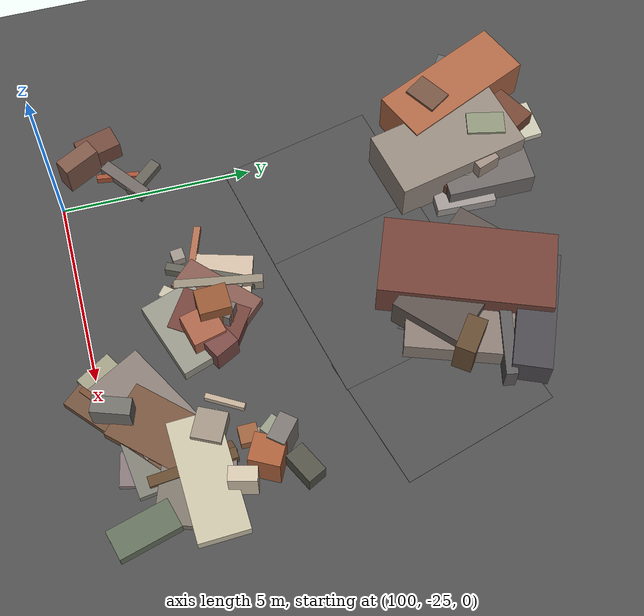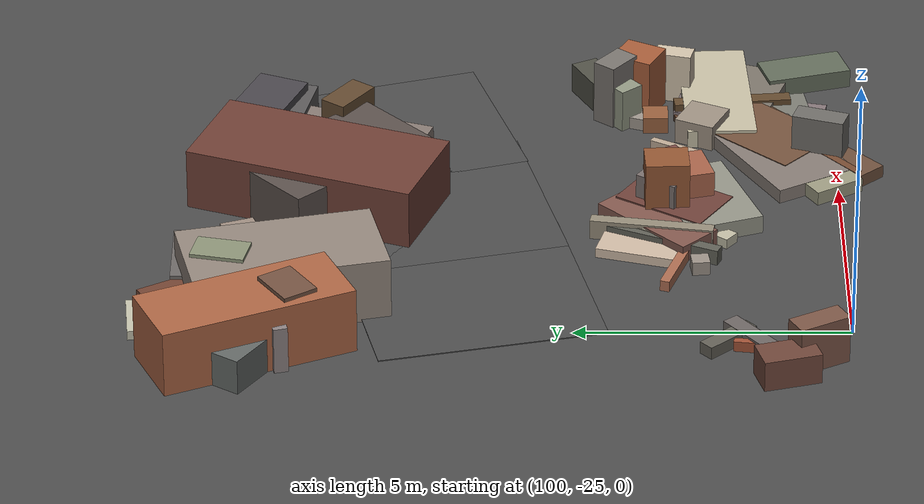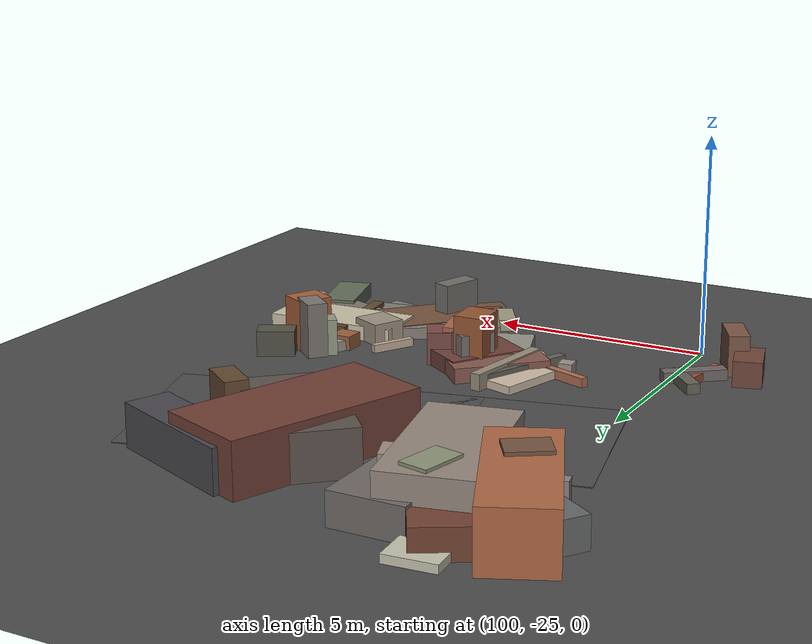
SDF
<sdf version="1.6">
 <world name="navitas_arena">
  <model name="ground_plane">
   <static>true</static>
   <link name="link">
    <collision name="collision">
     <geometry><plane><normal>0 0 1</normal><size>400 400</size></plane></geometry>
     <surface><friction><ode><mu>0.800</mu><mu2>0.800</mu2></ode></friction></surface>
    </collision>
    <visual name="visual">
     <cast_shadows>false</cast_shadows>
     <geometry><plane><normal>0 0 1</normal><size>400 400</size></plane></geometry>
     <material>
      <specular>0.04 0.04 0.04 1</specular>
      <script>
       <uri>file://media/materials/scripts/navitas_asphalt.material</uri>
       <name>Navitas/RealArenaAsphalt</name>
      </script>
     </material>
    </visual>
   </link>
  </model>
  <model name="road_zor_3_4">
   <static>true</static>
   <pose>101.390 -18.163 0.040 0 0 0.225</pose>
   <link name="link">
    <collision name="col"><geometry><box><size>3.949 4.200 0.020</size></box></geometry></collision>
    <visual name="vis">
     <geometry><box><size>3.949 4.200 0.020</size></box></geometry>
     <material>
      <specular>0.04 0.04 0.04 1</specular>
      <script>
       <uri>file://media/materials/scripts/navitas_asphalt.material</uri>
       <name>Navitas/RealArenaAsphalt</name>
      </script>
     </material>
    </visual>
   </link>
  </model>
  <model name="road_zor_3_5">
   <static>true</static>
   <pose>104.353 -17.463 0.040 0 0 0.239</pose>
   <link name="link">
    <collision name="col"><geometry><box><size>3.940 4.200 0.020</size></box></geometry></collision>
    <visual name="vis">
     <geometry><box><size>3.940 4.200 0.020</size></box></geometry>
     <material>
      <specular>0.04 0.04 0.04 1</specular>
      <script>
       <uri>file://media/materials/scripts/navitas_asphalt.material</uri>
       <name>Navitas/RealArenaAsphalt</name>
      </script>
     </material>
    </visual>
   </link>
  </model>
  <model name="road_zor_3_6">
   <static>true</static>
   <pose>107.102 -16.714 0.040 0 0 0.297</pose>
   <link name="link">
    <collision name="col"><geometry><box><size>3.562 4.200 0.020</size></box></geometry></collision>
    <visual name="vis">
     <geometry><box><size>3.562 4.200 0.020</size></box></geometry>
     <material>
      <specular>0.04 0.04 0.04 1</specular>
      <script>
       <uri>file://media/materials/scripts/navitas_asphalt.material</uri>
       <name>Navitas/RealArenaAsphalt</name>
      </script>
     </material>
    </visual>
   </link>
  </model>
  <model name="deb_zor_79">
   <static>true</static>
   <pose>100.558 -14.616 0.000 0 0 0</pose>
   <link name="link">
    <collision name="col_0">
     <pose>1.005 -0.386 0.356 0.000 0.000 1.425</pose>
     <geometry><box><size>1.147 0.582 0.711</size></box></geometry>
    </collision>
    <visual name="vis_0">
     <pose>1.005 -0.386 0.356 0.000 0.000 1.425</pose>
     <geometry><box><size>1.147 0.582 0.711</size></box></geometry>
     <material>
      <ambient>0.53 0.50 0.47 1</ambient>
      <diffuse>0.57 0.54 0.51 1</diffuse>
      <specular>0.05 0.05 0.045 1</specular>
     </material>
    </visual>
    <collision name="col_1">
     <pose>-0.240 -0.750 0.122 0.000 0.000 4.120</pose>
     <geometry><box><size>0.203 0.335 0.243</size></box></geometry>
    </collision>
    <visual name="vis_1">
     <pose>-0.240 -0.750 0.122 0.000 0.000 4.120</pose>
     <geometry><box><size>0.203 0.335 0.243</size></box></geometry>
     <material>
      <ambient>0.52 0.54 0.50 1</ambient>
      <diffuse>0.57 0.59 0.54 1</diffuse>
      <specular>0.05 0.05 0.045 1</specular>
     </material>
    </visual>
    <collision name="col_2">
     <pose>0.915 -0.486 0.303 0.000 0.000 2.898</pose>
     <geometry><box><size>1.034 0.739 0.606</size></box></geometry>
    </collision>
    <visual name="vis_2">
     <pose>0.915 -0.486 0.303 0.000 0.000 2.898</pose>
     <geometry><box><size>1.034 0.739 0.606</size></box></geometry>
     <material>
      <ambient>0.73 0.70 0.61 1</ambient>
      <diffuse>0.79 0.75 0.66 1</diffuse>
      <specular>0.05 0.05 0.045 1</specular>
     </material>
    </visual>
    <collision name="col_3">
     <pose>0.626 0.856 0.170 0.000 0.000 2.618</pose>
     <geometry><box><size>1.403 0.922 0.340</size></box></geometry>
    </collision>
    <visual name="vis_3">
     <pose>0.626 0.856 0.170 0.000 0.000 2.618</pose>
     <geometry><box><size>1.403 0.922 0.340</size></box></geometry>
     <material>
      <ambient>0.42 0.30 0.21 1</ambient>
      <diffuse>0.46 0.33 0.23 1</diffuse>
      <specular>0.05 0.05 0.045 1</specular>
     </material>
    </visual>
    <collision name="col_4">
     <pose>0.509 -0.779 0.139 0.000 0.000 1.353</pose>
     <geometry><box><size>0.456 0.291 0.279</size></box></geometry>
    </collision>
    <visual name="vis_4">
     <pose>0.509 -0.779 0.139 0.000 0.000 1.353</pose>
     <geometry><box><size>0.456 0.291 0.279</size></box></geometry>
     <material>
      <ambient>0.33 0.34 0.31 1</ambient>
      <diffuse>0.35 0.37 0.34 1</diffuse>
      <specular>0.05 0.05 0.045 1</specular>
     </material>
    </visual>
   </link>
  </model>
  <model name="deb_zor_85">
   <static>true</static>
   <pose>108.392 -23.581 0.000 0 0 0</pose>
   <link name="link">
    <collision name="col_0">
     <pose>-0.228 0.759 0.172 0.000 0.000 3.188</pose>
     <geometry><box><size>3.102 1.303 0.344</size></box></geometry>
    </collision>
    <visual name="vis_0">
     <pose>-0.228 0.759 0.172 0.000 0.000 3.188</pose>
     <geometry><box><size>3.102 1.303 0.344</size></box></geometry>
     <material>
      <ambient>0.73 0.69 0.60 1</ambient>
      <diffuse>0.78 0.75 0.65 1</diffuse>
      <specular>0.05 0.05 0.045 1</specular>
     </material>
    </visual>
    <collision name="col_1">
     <pose>0.687 -0.950 0.178 0.000 0.000 1.846</pose>
     <geometry><box><size>1.614 0.784 0.356</size></box></geometry>
    </collision>
    <visual name="vis_1">
     <pose>0.687 -0.950 0.178 0.000 0.000 1.846</pose>
     <geometry><box><size>1.614 0.784 0.356</size></box></geometry>
     <material>
      <ambient>0.36 0.39 0.33 1</ambient>
      <diffuse>0.39 0.43 0.36 1</diffuse>
      <specular>0.05 0.05 0.045 1</specular>
     </material>
    </visual>
    <collision name="col_2">
     <pose>0.548 -0.780 0.132 0.000 0.000 1.848</pose>
     <geometry><box><size>1.262 0.219 0.265</size></box></geometry>
    </collision>
    <visual name="vis_2">
     <pose>0.548 -0.780 0.132 0.000 0.000 1.848</pose>
     <geometry><box><size>1.262 0.219 0.265</size></box></geometry>
     <material>
      <ambient>0.35 0.29 0.28 1</ambient>
      <diffuse>0.38 0.31 0.30 1</diffuse>
      <specular>0.05 0.05 0.045 1</specular>
     </material>
    </visual>
    <collision name="col_3">
     <pose>-0.521 0.267 0.142 0.000 0.000 2.804</pose>
     <geometry><box><size>2.728 1.141 0.285</size></box></geometry>
    </collision>
    <visual name="vis_3">
     <pose>-0.521 0.267 0.142 0.000 0.000 2.804</pose>
     <geometry><box><size>2.728 1.141 0.285</size></box></geometry>
     <material>
      <ambient>0.45 0.43 0.39 1</ambient>
      <diffuse>0.49 0.46 0.42 1</diffuse>
      <specular>0.05 0.05 0.045 1</specular>
     </material>
    </visual>
   </link>
  </model>
  <model name="deb_zor_101">
   <static>true</static>
   <pose>107.456 -21.894 0.000 0 0 0</pose>
   <link name="link">
    <collision name="col_0">
     <pose>-0.001 0.595 0.117 0.000 0.000 -0.361</pose>
     <geometry><box><size>0.339 0.400 0.235</size></box></geometry>
    </collision>
    <visual name="vis_0">
     <pose>-0.001 0.595 0.117 0.000 0.000 -0.361</pose>
     <geometry><box><size>0.339 0.400 0.235</size></box></geometry>
     <material>
      <ambient>0.58 0.54 0.51 1</ambient>
      <diffuse>0.62 0.59 0.55 1</diffuse>
      <specular>0.05 0.05 0.045 1</specular>
     </material>
    </visual>
    <collision name="col_1">
     <pose>0.056 -0.245 0.066 0.000 0.000 1.880</pose>
     <geometry><box><size>0.184 0.253 0.132</size></box></geometry>
    </collision>
    <visual name="vis_1">
     <pose>0.056 -0.245 0.066 0.000 0.000 1.880</pose>
     <geometry><box><size>0.184 0.253 0.132</size></box></geometry>
     <material>
      <ambient>0.36 0.24 0.17 1</ambient>
      <diffuse>0.39 0.26 0.18 1</diffuse>
      <specular>0.05 0.05 0.045 1</specular>
     </material>
    </visual>
    <collision name="col_2">
     <pose>-0.085 0.240 0.163 0.000 0.000 1.576</pose>
     <geometry><box><size>0.472 0.475 0.327</size></box></geometry>
    </collision>
    <visual name="vis_2">
     <pose>-0.085 0.240 0.163 0.000 0.000 1.576</pose>
     <geometry><box><size>0.472 0.475 0.327</size></box></geometry>
     <material>
      <ambient>0.56 0.35 0.23 1</ambient>
      <diffuse>0.60 0.38 0.24 1</diffuse>
      <specular>0.05 0.05 0.045 1</specular>
     </material>
    </visual>
    <collision name="col_3">
     <pose>-0.466 -0.629 0.249 0.000 0.000 -0.447</pose>
     <geometry><box><size>0.796 0.766 0.497</size></box></geometry>
    </collision>
    <visual name="vis_3">
     <pose>-0.466 -0.629 0.249 0.000 0.000 -0.447</pose>
     <geometry><box><size>0.796 0.766 0.497</size></box></geometry>
     <material>
      <ambient>0.57 0.53 0.47 1</ambient>
      <diffuse>0.62 0.57 0.51 1</diffuse>
      <specular>0.05 0.05 0.045 1</specular>
     </material>
    </visual>
    <collision name="col_4">
     <pose>1.089 -0.137 0.494 0.000 0.000 1.318</pose>
     <geometry><box><size>0.708 0.376 0.988</size></box></geometry>
    </collision>
    <visual name="vis_4">
     <pose>1.089 -0.137 0.494 0.000 0.000 1.318</pose>
     <geometry><box><size>0.708 0.376 0.988</size></box></geometry>
     <material>
      <ambient>0.76 0.71 0.62 1</ambient>
      <diffuse>0.82 0.76 0.67 1</diffuse>
      <specular>0.05 0.05 0.045 1</specular>
     </material>
    </visual>
    <collision name="col_5">
     <pose>-1.106 -0.127 0.093 0.000 0.000 1.048</pose>
     <geometry><box><size>1.023 0.141 0.185</size></box></geometry>
    </collision>
    <visual name="vis_5">
     <pose>-1.106 -0.127 0.093 0.000 0.000 1.048</pose>
     <geometry><box><size>1.023 0.141 0.185</size></box></geometry>
     <material>
      <ambient>0.69 0.62 0.55 1</ambient>
      <diffuse>0.75 0.67 0.59 1</diffuse>
      <specular>0.05 0.05 0.045 1</specular>
     </material>
    </visual>
   </link>
  </model>
  <model name="deb_zor_125">
   <static>true</static>
   <pose>102.938 -21.543 0.000 0 0 0</pose>
   <link name="link">
    <collision name="col_0">
     <pose>-0.041 -0.094 0.148 0.000 0.000 1.144</pose>
     <geometry><box><size>2.342 0.215 0.296</size></box></geometry>
    </collision>
    <visual name="vis_0">
     <pose>-0.041 -0.094 0.148 0.000 0.000 1.144</pose>
     <geometry><box><size>2.342 0.215 0.296</size></box></geometry>
     <material>
      <ambient>0.35 0.35 0.31 1</ambient>
      <diffuse>0.38 0.38 0.34 1</diffuse>
      <specular>0.05 0.05 0.045 1</specular>
     </material>
    </visual>
    <collision name="col_1">
     <pose>0.262 0.051 0.188 0.000 0.000 1.405</pose>
     <geometry><box><size>2.274 0.232 0.377</size></box></geometry>
    </collision>
    <visual name="vis_1">
     <pose>0.262 0.051 0.188 0.000 0.000 1.405</pose>
     <geometry><box><size>2.274 0.232 0.377</size></box></geometry>
     <material>
      <ambient>0.54 0.51 0.45 1</ambient>
      <diffuse>0.59 0.55 0.48 1</diffuse>
      <specular>0.05 0.05 0.045 1</specular>
     </material>
    </visual>
    <collision name="col_2">
     <pose>0.159 0.120 0.156 0.000 0.000 1.039</pose>
     <geometry><box><size>1.206 0.147 0.313</size></box></geometry>
    </collision>
    <visual name="vis_2">
     <pose>0.159 0.120 0.156 0.000 0.000 1.039</pose>
     <geometry><box><size>1.206 0.147 0.313</size></box></geometry>
     <material>
      <ambient>0.65 0.62 0.55 1</ambient>
      <diffuse>0.70 0.67 0.59 1</diffuse>
      <specular>0.05 0.05 0.045 1</specular>
     </material>
    </visual>
    <collision name="col_3">
     <pose>0.315 0.103 0.092 0.000 0.000 1.290</pose>
     <geometry><box><size>1.551 1.784 0.184</size></box></geometry>
    </collision>
    <visual name="vis_3">
     <pose>0.315 0.103 0.092 0.000 0.000 1.290</pose>
     <geometry><box><size>1.551 1.784 0.184</size></box></geometry>
     <material>
      <ambient>0.75 0.67 0.60 1</ambient>
      <diffuse>0.81 0.73 0.65 1</diffuse>
      <specular>0.05 0.05 0.045 1</specular>
     </material>
    </visual>
   </link>
  </model>
  <model name="deb_zor_128">
   <static>true</static>
   <pose>100.625 -14.306 0.000 0 0 0</pose>
   <link name="link">
    <collision name="col_0">
     <pose>0.789 0.393 0.109 0.000 0.000 2.242</pose>
     <geometry><box><size>0.449 0.219 0.217</size></box></geometry>
    </collision>
    <visual name="vis_0">
     <pose>0.789 0.393 0.109 0.000 0.000 2.242</pose>
     <geometry><box><size>0.449 0.219 0.217</size></box></geometry>
     <material>
      <ambient>0.49 0.51 0.46 1</ambient>
      <diffuse>0.53 0.55 0.50 1</diffuse>
      <specular>0.05 0.05 0.045 1</specular>
     </material>
    </visual>
    <collision name="col_1">
     <pose>0.316 -0.804 0.070 0.000 0.000 3.372</pose>
     <geometry><box><size>2.113 0.239 0.139</size></box></geometry>
    </collision>
    <visual name="vis_1">
     <pose>0.316 -0.804 0.070 0.000 0.000 3.372</pose>
     <geometry><box><size>2.113 0.239 0.139</size></box></geometry>
     <material>
      <ambient>0.45 0.31 0.25 1</ambient>
      <diffuse>0.48 0.34 0.27 1</diffuse>
      <specular>0.05 0.05 0.045 1</specular>
     </material>
    </visual>
    <collision name="col_2">
     <pose>1.102 -0.342 0.157 0.000 0.000 3.110</pose>
     <geometry><box><size>1.742 1.581 0.314</size></box></geometry>
    </collision>
    <visual name="vis_2">
     <pose>1.102 -0.342 0.157 0.000 0.000 3.110</pose>
     <geometry><box><size>1.742 1.581 0.314</size></box></geometry>
     <material>
      <ambient>0.57 0.55 0.53 1</ambient>
      <diffuse>0.62 0.59 0.57 1</diffuse>
      <specular>0.05 0.05 0.045 1</specular>
     </material>
    </visual>
    <collision name="col_3">
     <pose>-0.212 1.021 0.089 0.000 0.000 1.650</pose>
     <geometry><box><size>2.502 1.074 0.178</size></box></geometry>
    </collision>
    <visual name="vis_3">
     <pose>-0.212 1.021 0.089 0.000 0.000 1.650</pose>
     <geometry><box><size>2.502 1.074 0.178</size></box></geometry>
     <material>
      <ambient>0.72 0.70 0.63 1</ambient>
      <diffuse>0.77 0.76 0.68 1</diffuse>
      <specular>0.05 0.05 0.045 1</specular>
     </material>
    </visual>
    <collision name="col_4">
     <pose>0.455 0.418 0.338 0.000 0.000 2.115</pose>
     <geometry><box><size>0.529 0.873 0.676</size></box></geometry>
    </collision>
    <visual name="vis_4">
     <pose>0.455 0.418 0.338 0.000 0.000 2.115</pose>
     <geometry><box><size>0.529 0.873 0.676</size></box></geometry>
     <material>
      <ambient>0.49 0.36 0.25 1</ambient>
      <diffuse>0.53 0.38 0.27 1</diffuse>
      <specular>0.05 0.05 0.045 1</specular>
     </material>
    </visual>
   </link>
  </model>
  <model name="deb_zor_168">
   <static>true</static>
   <pose>104.548 -22.015 0.000 0 0 0</pose>
   <link name="link">
    <collision name="col_0">
     <pose>-0.395 0.091 0.186 0.000 0.000 4.134</pose>
     <geometry><box><size>1.817 1.171 0.372</size></box></geometry>
    </collision>
    <visual name="vis_0">
     <pose>-0.395 0.091 0.186 0.000 0.000 4.134</pose>
     <geometry><box><size>1.817 1.171 0.372</size></box></geometry>
     <material>
      <ambient>0.40 0.25 0.21 1</ambient>
      <diffuse>0.44 0.26 0.23 1</diffuse>
      <specular>0.05 0.05 0.045 1</specular>
     </material>
    </visual>
    <collision name="col_1">
     <pose>-0.296 -0.479 0.175 0.000 0.000 3.477</pose>
     <geometry><box><size>2.143 1.457 0.350</size></box></geometry>
    </collision>
    <visual name="vis_1">
     <pose>-0.296 -0.479 0.175 0.000 0.000 3.477</pose>
     <geometry><box><size>2.143 1.457 0.350</size></box></geometry>
     <material>
      <ambient>0.53 0.54 0.49 1</ambient>
      <diffuse>0.58 0.58 0.53 1</diffuse>
      <specular>0.05 0.05 0.045 1</specular>
     </material>
    </visual>
    <collision name="col_2">
     <pose>0.364 0.148 0.371 0.000 0.000 2.065</pose>
     <geometry><box><size>0.678 0.805 0.742</size></box></geometry>
    </collision>
    <visual name="vis_2">
     <pose>0.364 0.148 0.371 0.000 0.000 2.065</pose>
     <geometry><box><size>0.678 0.805 0.742</size></box></geometry>
     <material>
      <ambient>0.45 0.27 0.25 1</ambient>
      <diffuse>0.48 0.29 0.27 1</diffuse>
      <specular>0.05 0.05 0.045 1</specular>
     </material>
    </visual>
    <collision name="col_3">
     <pose>-0.458 0.242 0.625 0.000 0.000 3.182</pose>
     <geometry><box><size>0.689 0.812 1.250</size></box></geometry>
    </collision>
    <visual name="vis_3">
     <pose>-0.458 0.242 0.625 0.000 0.000 3.182</pose>
     <geometry><box><size>0.689 0.812 1.250</size></box></geometry>
     <material>
      <ambient>0.54 0.31 0.19 1</ambient>
      <diffuse>0.58 0.34 0.20 1</diffuse>
      <specular>0.05 0.05 0.045 1</specular>
     </material>
    </visual>
    <collision name="col_4">
     <pose>-0.035 -0.118 0.426 0.000 0.000 3.393</pose>
     <geometry><box><size>0.875 0.868 0.851</size></box></geometry>
    </collision>
    <visual name="vis_4">
     <pose>-0.035 -0.118 0.426 0.000 0.000 3.393</pose>
     <geometry><box><size>0.875 0.868 0.851</size></box></geometry>
     <material>
      <ambient>0.61 0.36 0.27 1</ambient>
      <diffuse>0.66 0.39 0.29 1</diffuse>
      <specular>0.05 0.05 0.045 1</specular>
     </material>
    </visual>
    <collision name="col_5">
     <pose>-0.439 0.329 0.418 0.000 0.000 2.551</pose>
     <geometry><box><size>0.458 0.827 0.837</size></box></geometry>
    </collision>
    <visual name="vis_5">
     <pose>-0.439 0.329 0.418 0.000 0.000 2.551</pose>
     <geometry><box><size>0.458 0.827 0.837</size></box></geometry>
     <material>
      <ambient>0.44 0.41 0.40 1</ambient>
      <diffuse>0.48 0.44 0.43 1</diffuse>
      <specular>0.05 0.05 0.045 1</specular>
     </material>
    </visual>
   </link>
  </model>
  <model name="deb_zor_214">
   <static>true</static>
   <pose>108.108 -20.907 0.000 0 0 0</pose>
   <link name="link">
    <collision name="col_0">
     <pose>-0.317 -0.410 0.104 0.000 0.000 0.873</pose>
     <geometry><box><size>0.395 0.336 0.209</size></box></geometry>
    </collision>
    <visual name="vis_0">
     <pose>-0.317 -0.410 0.104 0.000 0.000 0.873</pose>
     <geometry><box><size>0.395 0.336 0.209</size></box></geometry>
     <material>
      <ambient>0.49 0.48 0.44 1</ambient>
      <diffuse>0.53 0.52 0.48 1</diffuse>
      <specular>0.05 0.05 0.045 1</specular>
     </material>
    </visual>
    <collision name="col_1">
     <pose>0.064 -0.443 0.588 0.000 0.000 1.091</pose>
     <geometry><box><size>0.794 0.711 1.177</size></box></geometry>
    </collision>
    <visual name="vis_1">
     <pose>0.064 -0.443 0.588 0.000 0.000 1.091</pose>
     <geometry><box><size>0.794 0.711 1.177</size></box></geometry>
     <material>
      <ambient>0.61 0.34 0.21 1</ambient>
      <diffuse>0.66 0.37 0.23 1</diffuse>
      <specular>0.05 0.05 0.045 1</specular>
     </material>
    </visual>
    <collision name="col_2">
     <pose>0.395 0.390 0.292 0.000 0.000 2.045</pose>
     <geometry><box><size>0.517 0.858 0.585</size></box></geometry>
    </collision>
    <visual name="vis_2">
     <pose>0.395 0.390 0.292 0.000 0.000 2.045</pose>
     <geometry><box><size>0.517 0.858 0.585</size></box></geometry>
     <material>
      <ambient>0.30 0.29 0.26 1</ambient>
      <diffuse>0.32 0.32 0.28 1</diffuse>
      <specular>0.05 0.05 0.045 1</specular>
     </material>
    </visual>
    <collision name="col_3">
     <pose>-0.541 -0.133 0.415 0.000 0.000 2.265</pose>
     <geometry><box><size>0.483 0.533 0.829</size></box></geometry>
    </collision>
    <visual name="vis_3">
     <pose>-0.541 -0.133 0.415 0.000 0.000 2.265</pose>
     <geometry><box><size>0.483 0.533 0.829</size></box></geometry>
     <material>
      <ambient>0.53 0.55 0.48 1</ambient>
      <diffuse>0.58 0.60 0.52 1</diffuse>
      <specular>0.05 0.05 0.045 1</specular>
     </material>
    </visual>
    <collision name="col_4">
     <pose>-0.334 0.008 0.625 0.000 0.000 0.882</pose>
     <geometry><box><size>0.464 0.715 1.249</size></box></geometry>
    </collision>
    <visual name="vis_4">
     <pose>-0.334 0.008 0.625 0.000 0.000 0.882</pose>
     <geometry><box><size>0.464 0.715 1.249</size></box></geometry>
     <material>
      <ambient>0.45 0.43 0.41 1</ambient>
      <diffuse>0.48 0.46 0.44 1</diffuse>
      <specular>0.05 0.05 0.045 1</specular>
     </material>
    </visual>
   </link>
  </model>
  <model name="deb_zor_257">
   <static>true</static>
   <pose>107.472 -23.402 0.000 0 0 0</pose>
   <link name="link">
    <collision name="col_0">
     <pose>0.069 0.335 0.068 0.000 0.000 3.535</pose>
     <geometry><box><size>0.207 0.228 0.136</size></box></geometry>
    </collision>
    <visual name="vis_0">
     <pose>0.069 0.335 0.068 0.000 0.000 3.535</pose>
     <geometry><box><size>0.207 0.228 0.136</size></box></geometry>
     <material>
      <ambient>0.42 0.27 0.23 1</ambient>
      <diffuse>0.45 0.29 0.24 1</diffuse>
      <specular>0.05 0.05 0.045 1</specular>
     </material>
    </visual>
    <collision name="col_1">
     <pose>-0.535 -0.196 0.112 0.000 0.000 1.541</pose>
     <geometry><box><size>1.840 0.230 0.223</size></box></geometry>
    </collision>
    <visual name="vis_1">
     <pose>-0.535 -0.196 0.112 0.000 0.000 1.541</pose>
     <geometry><box><size>1.840 0.230 0.223</size></box></geometry>
     <material>
      <ambient>0.61 0.35 0.24 1</ambient>
      <diffuse>0.66 0.37 0.26 1</diffuse>
      <specular>0.05 0.05 0.045 1</specular>
     </material>
    </visual>
    <collision name="col_2">
     <pose>-0.467 -0.200 0.135 0.000 0.000 1.211</pose>
     <geometry><box><size>0.398 0.208 0.270</size></box></geometry>
    </collision>
    <visual name="vis_2">
     <pose>-0.467 -0.200 0.135 0.000 0.000 1.211</pose>
     <geometry><box><size>0.398 0.208 0.270</size></box></geometry>
     <material>
      <ambient>0.66 0.64 0.58 1</ambient>
      <diffuse>0.72 0.69 0.62 1</diffuse>
      <specular>0.05 0.05 0.045 1</specular>
     </material>
    </visual>
    <collision name="col_3">
     <pose>0.401 0.283 0.163 0.000 0.000 1.670</pose>
     <geometry><box><size>2.213 0.274 0.326</size></box></geometry>
    </collision>
    <visual name="vis_3">
     <pose>0.401 0.283 0.163 0.000 0.000 1.670</pose>
     <geometry><box><size>2.213 0.274 0.326</size></box></geometry>
     <material>
      <ambient>0.36 0.27 0.17 1</ambient>
      <diffuse>0.39 0.29 0.18 1</diffuse>
      <specular>0.05 0.05 0.045 1</specular>
     </material>
    </visual>
    <collision name="col_4">
     <pose>0.275 -0.056 0.093 0.000 0.000 1.359</pose>
     <geometry><box><size>2.798 0.868 0.186</size></box></geometry>
    </collision>
    <visual name="vis_4">
     <pose>0.275 -0.056 0.093 0.000 0.000 1.359</pose>
     <geometry><box><size>2.798 0.868 0.186</size></box></geometry>
     <material>
      <ambient>0.48 0.43 0.43 1</ambient>
      <diffuse>0.52 0.46 0.47 1</diffuse>
      <specular>0.05 0.05 0.045 1</specular>
     </material>
    </visual>
    <collision name="col_5">
     <pose>-0.189 -0.128 0.080 0.000 0.000 2.247</pose>
     <geometry><box><size>1.626 0.136 0.160</size></box></geometry>
    </collision>
    <visual name="vis_5">
     <pose>-0.189 -0.128 0.080 0.000 0.000 2.247</pose>
     <geometry><box><size>1.626 0.136 0.160</size></box></geometry>
     <material>
      <ambient>0.75 0.70 0.59 1</ambient>
      <diffuse>0.81 0.76 0.64 1</diffuse>
      <specular>0.05 0.05 0.045 1</specular>
     </material>
    </visual>
    <collision name="col_6">
     <pose>-0.107 0.220 0.141 0.000 0.000 3.856</pose>
     <geometry><box><size>0.259 0.334 0.282</size></box></geometry>
    </collision>
    <visual name="vis_6">
     <pose>-0.107 0.220 0.141 0.000 0.000 3.856</pose>
     <geometry><box><size>0.259 0.334 0.282</size></box></geometry>
     <material>
      <ambient>0.46 0.35 0.27 1</ambient>
      <diffuse>0.50 0.37 0.29 1</diffuse>
      <specular>0.05 0.05 0.045 1</specular>
     </material>
    </visual>
   </link>
  </model>
  <model name="deb_zor_269">
   <static>true</static>
   <pose>106.038 -23.989 0.000 0 0 0</pose>
   <link name="link">
    <collision name="col_0">
     <pose>0.073 -0.646 0.138 0.000 0.000 0.697</pose>
     <geometry><box><size>2.296 0.159 0.276</size></box></geometry>
    </collision>
    <visual name="vis_0">
     <pose>0.073 -0.646 0.138 0.000 0.000 0.697</pose>
     <geometry><box><size>2.296 0.159 0.276</size></box></geometry>
     <material>
      <ambient>0.44 0.28 0.19 1</ambient>
      <diffuse>0.47 0.30 0.20 1</diffuse>
      <specular>0.05 0.05 0.045 1</specular>
     </material>
    </visual>
    <collision name="col_1">
     <pose>0.976 0.018 0.106 0.000 0.000 0.139</pose>
     <geometry><box><size>2.388 1.394 0.213</size></box></geometry>
    </collision>
    <visual name="vis_1">
     <pose>0.976 0.018 0.106 0.000 0.000 0.139</pose>
     <geometry><box><size>2.388 1.394 0.213</size></box></geometry>
     <material>
      <ambient>0.45 0.45 0.41 1</ambient>
      <diffuse>0.49 0.49 0.45 1</diffuse>
      <specular>0.05 0.05 0.045 1</specular>
     </material>
    </visual>
    <collision name="col_2">
     <pose>-0.644 -0.606 0.131 0.000 0.000 0.555</pose>
     <geometry><box><size>1.594 0.999 0.263</size></box></geometry>
    </collision>
    <visual name="vis_2">
     <pose>-0.644 -0.606 0.131 0.000 0.000 0.555</pose>
     <geometry><box><size>1.594 0.999 0.263</size></box></geometry>
     <material>
      <ambient>0.57 0.57 0.48 1</ambient>
      <diffuse>0.62 0.61 0.51 1</diffuse>
      <specular>0.05 0.05 0.045 1</specular>
     </material>
    </visual>
    <collision name="col_3">
     <pose>0.292 -0.518 0.121 0.000 0.000 0.725</pose>
     <geometry><box><size>3.035 0.907 0.241</size></box></geometry>
    </collision>
    <visual name="vis_3">
     <pose>0.292 -0.518 0.121 0.000 0.000 0.725</pose>
     <geometry><box><size>3.035 0.907 0.241</size></box></geometry>
     <material>
      <ambient>0.41 0.30 0.22 1</ambient>
      <diffuse>0.44 0.32 0.24 1</diffuse>
      <specular>0.05 0.05 0.045 1</specular>
     </material>
    </visual>
    <collision name="col_4">
     <pose>-0.060 -0.028 0.134 0.000 0.000 0.517</pose>
     <geometry><box><size>2.389 1.655 0.268</size></box></geometry>
    </collision>
    <visual name="vis_4">
     <pose>-0.060 -0.028 0.134 0.000 0.000 0.517</pose>
     <geometry><box><size>2.389 1.655 0.268</size></box></geometry>
     <material>
      <ambient>0.49 0.45 0.42 1</ambient>
      <diffuse>0.53 0.49 0.46 1</diffuse>
      <specular>0.05 0.05 0.045 1</specular>
     </material>
    </visual>
    <collision name="col_5">
     <pose>0.080 -0.709 0.488 0.000 0.000 1.241</pose>
     <geometry><box><size>0.981 0.437 0.977</size></box></geometry>
    </collision>
    <visual name="vis_5">
     <pose>0.080 -0.709 0.488 0.000 0.000 1.241</pose>
     <geometry><box><size>0.981 0.437 0.977</size></box></geometry>
     <material>
      <ambient>0.41 0.40 0.38 1</ambient>
      <diffuse>0.44 0.43 0.41 1</diffuse>
      <specular>0.05 0.05 0.045 1</specular>
     </material>
    </visual>
    <collision name="col_6">
     <pose>0.723 0.307 0.143 0.000 0.000 0.821</pose>
     <geometry><box><size>2.317 1.484 0.285</size></box></geometry>
    </collision>
    <visual name="vis_6">
     <pose>0.723 0.307 0.143 0.000 0.000 0.821</pose>
     <geometry><box><size>2.317 1.484 0.285</size></box></geometry>
     <material>
      <ambient>0.42 0.31 0.22 1</ambient>
      <diffuse>0.46 0.33 0.24 1</diffuse>
      <specular>0.05 0.05 0.045 1</specular>
     </material>
    </visual>
   </link>
  </model>
  <model name="deb_zor_386">
   <static>true</static>
   <pose>99.451 -23.400 0.000 0 0 0</pose>
   <link name="link">
    <collision name="col_0">
     <pose>-0.531 -0.787 0.126 0.000 0.000 2.034</pose>
     <geometry><box><size>0.307 0.403 0.251</size></box></geometry>
    </collision>
    <visual name="vis_0">
     <pose>-0.531 -0.787 0.126 0.000 0.000 2.034</pose>
     <geometry><box><size>0.307 0.403 0.251</size></box></geometry>
     <material>
      <ambient>0.69 0.62 0.55 1</ambient>
      <diffuse>0.74 0.67 0.59 1</diffuse>
      <specular>0.05 0.05 0.045 1</specular>
     </material>
    </visual>
    <collision name="col_1">
     <pose>0.096 0.146 0.121 0.000 0.000 3.808</pose>
     <geometry><box><size>1.432 0.319 0.241</size></box></geometry>
    </collision>
    <visual name="vis_1">
     <pose>0.096 0.146 0.121 0.000 0.000 3.808</pose>
     <geometry><box><size>1.432 0.319 0.241</size></box></geometry>
     <material>
      <ambient>0.40 0.37 0.36 1</ambient>
      <diffuse>0.43 0.40 0.39 1</diffuse>
      <specular>0.05 0.05 0.045 1</specular>
     </material>
    </visual>
    <collision name="col_2">
     <pose>0.135 0.635 0.118 0.000 0.000 2.303</pose>
     <geometry><box><size>1.110 0.294 0.235</size></box></geometry>
    </collision>
    <visual name="vis_2">
     <pose>0.135 0.635 0.118 0.000 0.000 2.303</pose>
     <geometry><box><size>1.110 0.294 0.235</size></box></geometry>
     <material>
      <ambient>0.37 0.35 0.32 1</ambient>
      <diffuse>0.39 0.38 0.34 1</diffuse>
      <specular>0.05 0.05 0.045 1</specular>
     </material>
    </visual>
    <collision name="col_3">
     <pose>-0.085 -0.010 0.100 0.000 0.000 1.424</pose>
     <geometry><box><size>1.115 0.136 0.200</size></box></geometry>
    </collision>
    <visual name="vis_3">
     <pose>-0.085 -0.010 0.100 0.000 0.000 1.424</pose>
     <geometry><box><size>1.115 0.136 0.200</size></box></geometry>
     <material>
      <ambient>0.59 0.30 0.19 1</ambient>
      <diffuse>0.63 0.32 0.21 1</diffuse>
      <specular>0.05 0.05 0.045 1</specular>
     </material>
    </visual>
    <collision name="col_4">
     <pose>-0.446 -0.940 0.462 0.000 0.000 2.065</pose>
     <geometry><box><size>1.007 0.462 0.923</size></box></geometry>
    </collision>
    <visual name="vis_4">
     <pose>-0.446 -0.940 0.462 0.000 0.000 2.065</pose>
     <geometry><box><size>1.007 0.462 0.923</size></box></geometry>
     <material>
      <ambient>0.45 0.32 0.26 1</ambient>
      <diffuse>0.49 0.34 0.28 1</diffuse>
      <specular>0.05 0.05 0.045 1</specular>
     </material>
    </visual>
    <collision name="col_5">
     <pose>-0.956 -0.375 0.291 0.000 0.000 1.841</pose>
     <geometry><box><size>1.065 0.637 0.582</size></box></geometry>
    </collision>
    <visual name="vis_5">
     <pose>-0.956 -0.375 0.291 0.000 0.000 1.841</pose>
     <geometry><box><size>1.065 0.637 0.582</size></box></geometry>
     <material>
      <ambient>0.41 0.26 0.21 1</ambient>
      <diffuse>0.44 0.28 0.23 1</diffuse>
      <specular>0.05 0.05 0.045 1</specular>
     </material>
    </visual>
   </link>
  </model>
  <model name="deb_zor_388">
   <static>true</static>
   <pose>103.298 -22.203 0.000 0 0 0</pose>
   <link name="link">
    <collision name="col_0">
     <pose>0.185 0.603 0.171 0.000 0.000 0.769</pose>
     <geometry><box><size>2.181 0.895 0.342</size></box></geometry>
    </collision>
    <visual name="vis_0">
     <pose>0.185 0.603 0.171 0.000 0.000 0.769</pose>
     <geometry><box><size>2.181 0.895 0.342</size></box></geometry>
     <material>
      <ambient>0.49 0.33 0.29 1</ambient>
      <diffuse>0.52 0.35 0.31 1</diffuse>
      <specular>0.05 0.05 0.045 1</specular>
     </material>
    </visual>
    <collision name="col_1">
     <pose>-0.192 -0.634 0.098 0.000 0.000 2.463</pose>
     <geometry><box><size>0.324 0.291 0.196</size></box></geometry>
    </collision>
    <visual name="vis_1">
     <pose>-0.192 -0.634 0.098 0.000 0.000 2.463</pose>
     <geometry><box><size>0.324 0.291 0.196</size></box></geometry>
     <material>
      <ambient>0.70 0.69 0.60 1</ambient>
      <diffuse>0.76 0.74 0.65 1</diffuse>
      <specular>0.05 0.05 0.045 1</specular>
     </material>
    </visual>
    <collision name="col_2">
     <pose>0.949 0.223 0.129 0.000 0.000 1.849</pose>
     <geometry><box><size>0.424 0.389 0.257</size></box></geometry>
    </collision>
    <visual name="vis_2">
     <pose>0.949 0.223 0.129 0.000 0.000 1.849</pose>
     <geometry><box><size>0.424 0.389 0.257</size></box></geometry>
     <material>
      <ambient>0.72 0.70 0.60 1</ambient>
      <diffuse>0.78 0.76 0.65 1</diffuse>
      <specular>0.05 0.05 0.045 1</specular>
     </material>
    </visual>
    <collision name="col_3">
     <pose>-1.159 -0.140 0.130 0.000 0.000 3.248</pose>
     <geometry><box><size>0.320 0.327 0.260</size></box></geometry>
    </collision>
    <visual name="vis_3">
     <pose>-1.159 -0.140 0.130 0.000 0.000 3.248</pose>
     <geometry><box><size>0.320 0.327 0.260</size></box></geometry>
     <material>
      <ambient>0.57 0.53 0.49 1</ambient>
      <diffuse>0.61 0.57 0.53 1</diffuse>
      <specular>0.05 0.05 0.045 1</specular>
     </material>
    </visual>
    <collision name="col_4">
     <pose>-1.171 0.278 0.103 0.000 0.000 2.805</pose>
     <geometry><box><size>1.493 0.176 0.207</size></box></geometry>
    </collision>
    <visual name="vis_4">
     <pose>-1.171 0.278 0.103 0.000 0.000 2.805</pose>
     <geometry><box><size>1.493 0.176 0.207</size></box></geometry>
     <material>
      <ambient>0.63 0.40 0.30 1</ambient>
      <diffuse>0.68 0.43 0.32 1</diffuse>
      <specular>0.05 0.05 0.045 1</specular>
     </material>
    </visual>
   </link>
  </model>
  <model name="chic_zor_0">
   <static>true</static>
   <pose>100.515 -14.430 0.000 0 0 0</pose>
   <link name="link">
    <collision name="col_0">
     <pose>1.251 0.388 0.584 0.000 0.000 3.494</pose>
     <geometry><box><size>0.443 0.627 1.168</size></box></geometry>
    </collision>
    <visual name="vis_0">
     <pose>1.251 0.388 0.584 0.000 0.000 3.494</pose>
     <geometry><box><size>0.443 0.627 1.168</size></box></geometry>
     <material>
      <ambient>0.57 0.51 0.46 1</ambient>
      <diffuse>0.62 0.55 0.50 1</diffuse>
      <specular>0.05 0.05 0.045 1</specular>
     </material>
    </visual>
    <collision name="col_1">
     <pose>0.305 0.702 0.640 0.000 0.000 2.926</pose>
     <geometry><box><size>0.632 0.992 1.280</size></box></geometry>
    </collision>
    <visual name="vis_1">
     <pose>0.305 0.702 0.640 0.000 0.000 2.926</pose>
     <geometry><box><size>0.632 0.992 1.280</size></box></geometry>
     <material>
      <ambient>0.51 0.53 0.44 1</ambient>
      <diffuse>0.55 0.58 0.47 1</diffuse>
      <specular>0.05 0.05 0.045 1</specular>
     </material>
    </visual>
    <collision name="col_2">
     <pose>-0.781 -0.165 0.446 0.000 0.000 3.390</pose>
     <geometry><box><size>2.140 0.262 0.892</size></box></geometry>
    </collision>
    <visual name="vis_2">
     <pose>-0.781 -0.165 0.446 0.000 0.000 3.390</pose>
     <geometry><box><size>2.140 0.262 0.892</size></box></geometry>
     <material>
      <ambient>0.51 0.47 0.47 1</ambient>
      <diffuse>0.55 0.51 0.51 1</diffuse>
      <specular>0.05 0.05 0.045 1</specular>
     </material>
    </visual>
    <collision name="col_3">
     <pose>-1.078 0.356 0.335 0.000 0.000 2.547</pose>
     <geometry><box><size>2.374 1.706 0.671</size></box></geometry>
    </collision>
    <visual name="vis_3">
     <pose>-1.078 0.356 0.335 0.000 0.000 2.547</pose>
     <geometry><box><size>2.374 1.706 0.671</size></box></geometry>
     <material>
      <ambient>0.37 0.38 0.37 1</ambient>
      <diffuse>0.39 0.41 0.40 1</diffuse>
      <specular>0.05 0.05 0.045 1</specular>
     </material>
    </visual>
    <collision name="col_4">
     <pose>-0.136 0.420 0.318 0.000 0.000 3.351</pose>
     <geometry><box><size>2.103 1.200 0.636</size></box></geometry>
    </collision>
    <visual name="vis_4">
     <pose>-0.136 0.420 0.318 0.000 0.000 3.351</pose>
     <geometry><box><size>2.103 1.200 0.636</size></box></geometry>
     <material>
      <ambient>0.59 0.33 0.22 1</ambient>
      <diffuse>0.63 0.36 0.24 1</diffuse>
      <specular>0.05 0.05 0.045 1</specular>
     </material>
    </visual>
    <collision name="col_5">
     <pose>1.093 0.471 0.354 0.000 0.000 1.569</pose>
     <geometry><box><size>2.305 1.603 0.708</size></box></geometry>
    </collision>
    <visual name="vis_5">
     <pose>1.093 0.471 0.354 0.000 0.000 1.569</pose>
     <geometry><box><size>2.305 1.603 0.708</size></box></geometry>
     <material>
      <ambient>0.40 0.38 0.37 1</ambient>
      <diffuse>0.43 0.41 0.40 1</diffuse>
      <specular>0.05 0.05 0.045 1</specular>
     </material>
    </visual>
    <collision name="col_6">
     <pose>-1.183 0.222 0.625 0.000 0.000 1.992</pose>
     <geometry><box><size>3.666 1.459 1.250</size></box></geometry>
    </collision>
    <visual name="vis_6">
     <pose>-1.183 0.222 0.625 0.000 0.000 1.992</pose>
     <geometry><box><size>3.666 1.459 1.250</size></box></geometry>
     <material>
      <ambient>0.63 0.37 0.25 1</ambient>
      <diffuse>0.68 0.40 0.27 1</diffuse>
      <specular>0.05 0.05 0.045 1</specular>
     </material>
    </visual>
    <collision name="col_7">
     <pose>-0.941 -0.528 0.663 0.000 0.000 3.725</pose>
     <geometry><box><size>0.909 0.676 1.326</size></box></geometry>
    </collision>
    <visual name="vis_7">
     <pose>-0.941 -0.528 0.663 0.000 0.000 3.725</pose>
     <geometry><box><size>0.909 0.676 1.326</size></box></geometry>
     <material>
      <ambient>0.42 0.30 0.24 1</ambient>
      <diffuse>0.46 0.33 0.26 1</diffuse>
      <specular>0.05 0.05 0.045 1</specular>
     </material>
    </visual>
    <collision name="col_8">
     <pose>0.500 -0.387 0.606 0.000 0.000 1.793</pose>
     <geometry><box><size>3.586 1.858 1.213</size></box></geometry>
    </collision>
    <visual name="vis_8">
     <pose>0.500 -0.387 0.606 0.000 0.000 1.793</pose>
     <geometry><box><size>3.586 1.858 1.213</size></box></geometry>
     <material>
      <ambient>0.54 0.49 0.45 1</ambient>
      <diffuse>0.58 0.53 0.49 1</diffuse>
      <specular>0.05 0.05 0.045 1</specular>
     </material>
    </visual>
    <collision name="col_9">
     <pose>-0.029 0.280 0.318 0.000 0.000 2.099</pose>
     <geometry><box><size>3.355 1.889 0.637</size></box></geometry>
    </collision>
    <visual name="vis_9">
     <pose>-0.029 0.280 0.318 0.000 0.000 2.099</pose>
     <geometry><box><size>3.355 1.889 0.637</size></box></geometry>
     <material>
      <ambient>0.42 0.25 0.19 1</ambient>
      <diffuse>0.45 0.27 0.20 1</diffuse>
      <specular>0.05 0.05 0.045 1</specular>
     </material>
    </visual>
   </link>
  </model>
  <model name="chic_zor_2">
   <static>true</static>
   <pose>105.598 -15.052 0.000 0 0 0</pose>
   <link name="link">
    <collision name="col_0">
     <pose>0.172 -1.235 0.366 0.000 0.000 2.312</pose>
     <geometry><box><size>0.344 0.206 0.732</size></box></geometry>
    </collision>
    <visual name="vis_0">
     <pose>0.172 -1.235 0.366 0.000 0.000 2.312</pose>
     <geometry><box><size>0.344 0.206 0.732</size></box></geometry>
     <material>
      <ambient>0.69 0.62 0.54 1</ambient>
      <diffuse>0.75 0.67 0.58 1</diffuse>
      <specular>0.05 0.05 0.045 1</specular>
     </material>
    </visual>
    <collision name="col_1">
     <pose>0.933 -0.822 0.609 0.000 0.000 2.503</pose>
     <geometry><box><size>0.956 0.512 1.219</size></box></geometry>
    </collision>
    <visual name="vis_1">
     <pose>0.933 -0.822 0.609 0.000 0.000 2.503</pose>
     <geometry><box><size>0.956 0.512 1.219</size></box></geometry>
     <material>
      <ambient>0.36 0.27 0.18 1</ambient>
      <diffuse>0.39 0.29 0.19 1</diffuse>
      <specular>0.05 0.05 0.045 1</specular>
     </material>
    </visual>
    <collision name="col_2">
     <pose>0.569 1.009 0.468 0.000 0.000 2.748</pose>
     <geometry><box><size>3.150 0.978 0.936</size></box></geometry>
    </collision>
    <visual name="vis_2">
     <pose>0.569 1.009 0.468 0.000 0.000 2.748</pose>
     <geometry><box><size>3.150 0.978 0.936</size></box></geometry>
     <material>
      <ambient>0.26 0.26 0.28 1</ambient>
      <diffuse>0.29 0.28 0.30 1</diffuse>
      <specular>0.05 0.05 0.045 1</specular>
     </material>
    </visual>
    <collision name="col_3">
     <pose>1.186 0.098 0.388 0.000 0.000 2.927</pose>
     <geometry><box><size>1.720 0.296 0.776</size></box></geometry>
    </collision>
    <visual name="vis_3">
     <pose>1.186 0.098 0.388 0.000 0.000 2.927</pose>
     <geometry><box><size>1.720 0.296 0.776</size></box></geometry>
     <material>
      <ambient>0.33 0.32 0.32 1</ambient>
      <diffuse>0.36 0.35 0.35 1</diffuse>
      <specular>0.05 0.05 0.045 1</specular>
     </material>
    </visual>
    <collision name="col_4">
     <pose>-0.976 -0.313 0.588 0.000 0.000 1.208</pose>
     <geometry><box><size>4.400 2.069 1.176</size></box></geometry>
    </collision>
    <visual name="vis_4">
     <pose>-0.976 -0.313 0.588 0.000 0.000 1.208</pose>
     <geometry><box><size>4.400 2.069 1.176</size></box></geometry>
     <material>
      <ambient>0.40 0.23 0.19 1</ambient>
      <diffuse>0.44 0.25 0.21 1</diffuse>
      <specular>0.05 0.05 0.045 1</specular>
     </material>
    </visual>
    <collision name="col_5">
     <pose>0.337 -0.881 0.333 0.000 0.000 1.237</pose>
     <geometry><box><size>2.708 1.575 0.667</size></box></geometry>
    </collision>
    <visual name="vis_5">
     <pose>0.337 -0.881 0.333 0.000 0.000 1.237</pose>
     <geometry><box><size>2.708 1.575 0.667</size></box></geometry>
     <material>
      <ambient>0.49 0.45 0.42 1</ambient>
      <diffuse>0.53 0.48 0.45 1</diffuse>
      <specular>0.05 0.05 0.045 1</specular>
     </material>
    </visual>
    <collision name="col_6">
     <pose>-0.805 -0.574 0.505 0.000 0.000 2.313</pose>
     <geometry><box><size>3.303 1.896 1.010</size></box></geometry>
    </collision>
    <visual name="vis_6">
     <pose>-0.805 -0.574 0.505 0.000 0.000 2.313</pose>
     <geometry><box><size>3.303 1.896 1.010</size></box></geometry>
     <material>
      <ambient>0.33 0.30 0.27 1</ambient>
      <diffuse>0.36 0.32 0.30 1</diffuse>
      <specular>0.05 0.05 0.045 1</specular>
     </material>
    </visual>
   </link>
  </model>
 </world>
</sdf>
